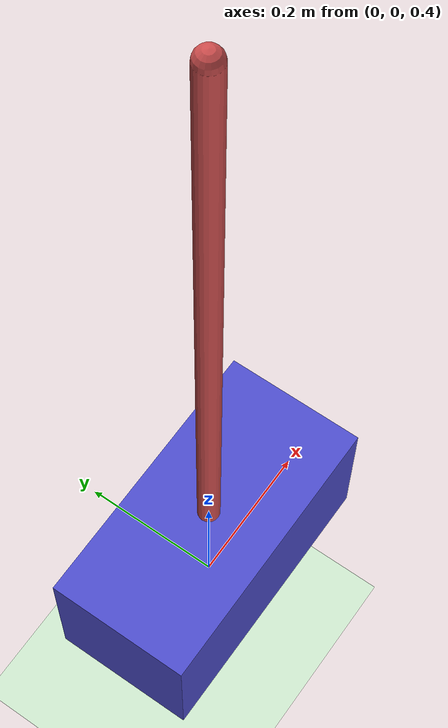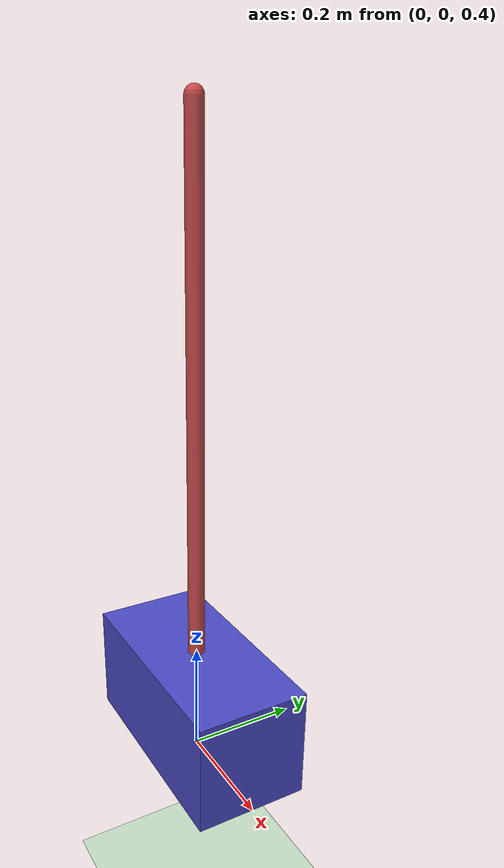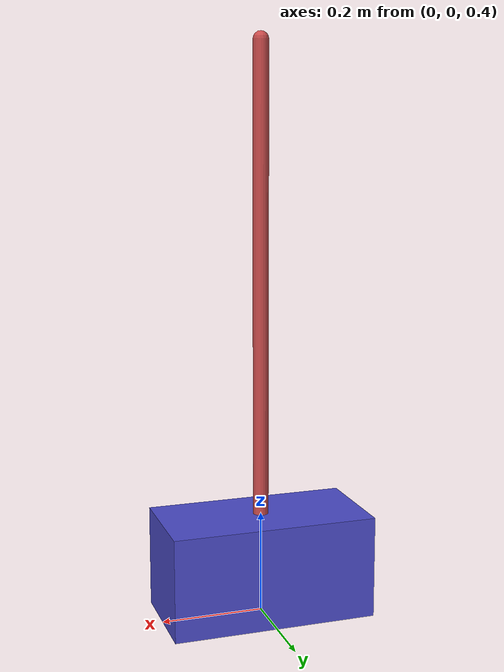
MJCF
<mujoco model="cartpole">
  <compiler angle="radian" autolimits="true"/>
  <option gravity="0 0 -9.81" integrator="RK4" timestep="0.001"/>

  <default>
    <joint damping="0.0"/>
    <geom type="capsule" rgba="0.8 0.6 0.4 1"/>
  </default>

  <asset>
    <material name="grey" rgba="0.5 0.5 0.5 1"/>
  </asset>

  <worldbody>
    <light name="light" pos="0 0 6"/>
    <geom name="floor" type="plane" size="5 5 0.1" rgba=".8 .9 .8 1"/>

    <!-- Cart -->
    <body name="cart" pos="0 0 0.5">
      <joint name="slider" type="slide" axis="1 0 0" range="-10 10"/>
      <geom name="cart" type="box" size="0.2 0.1 0.1" rgba="0.3 0.3 0.8 1"/>
      <inertial pos="0 0 0" mass="2.0" diaginertia="0.133 0.133 0.133"/>

      <!-- Pole -->
      <body name="pole" pos="0 0 0">
        <joint name="hinge" type="hinge" axis="0 1 0" limited="false"/>
        <geom name="pole" type="capsule" fromto="0 0 0 0 0 1" size="0.015" rgba="0.8 0.3 0.3 1" contype="0" conaffinity="0"/>
        <inertial pos="0 0 0.5" mass="0.2" diaginertia="0.016667 0.016667 0.0001"/>
      </body>
    </body>
  </worldbody>

  <actuator>
    <motor name="slide" joint="slider" gear="1" ctrllimited="true" ctrlrange="-5 5"/>
  </actuator>
</mujoco>
